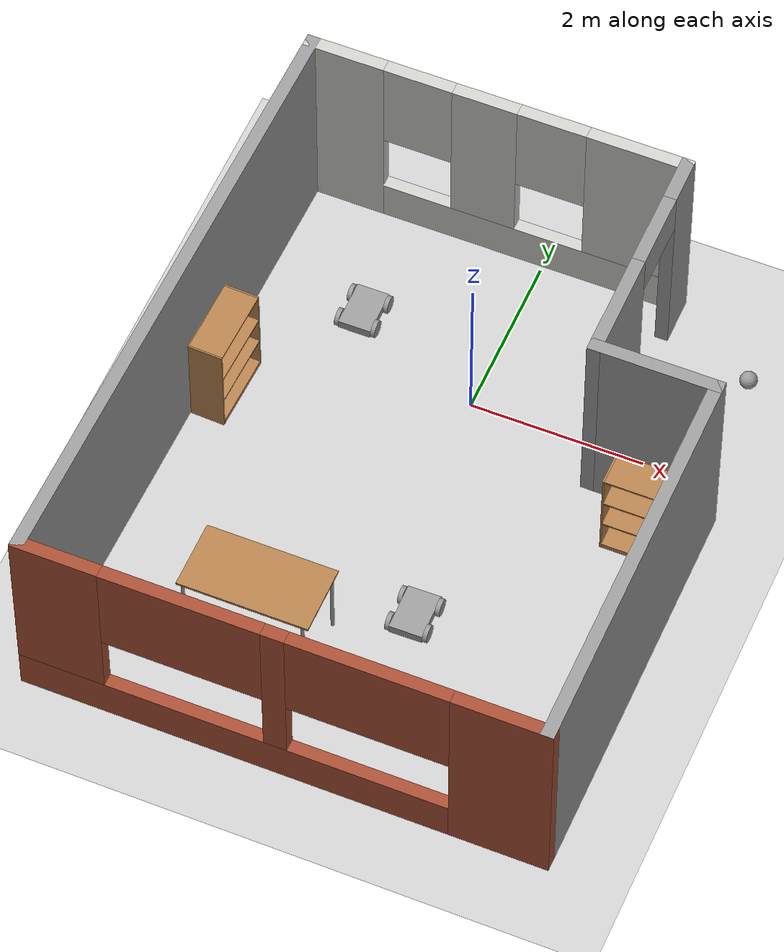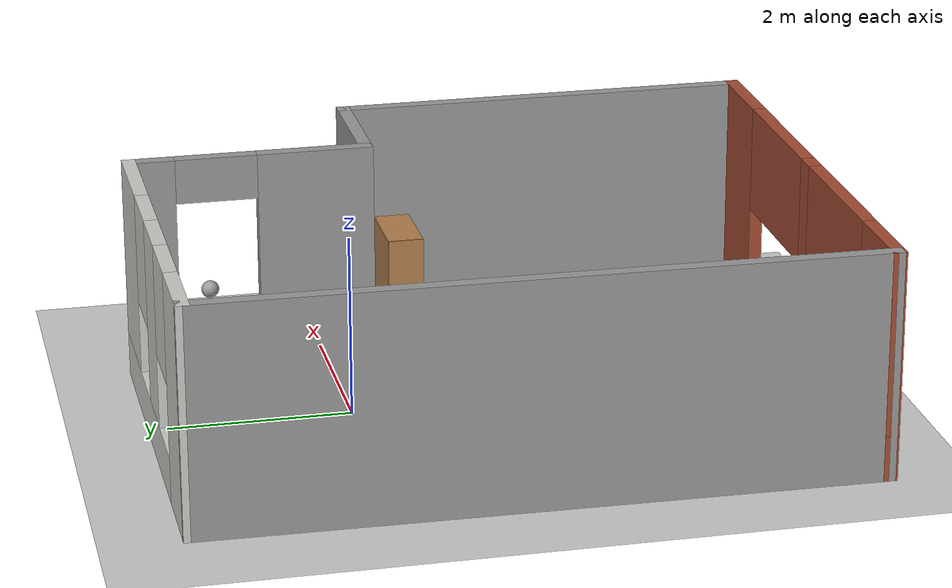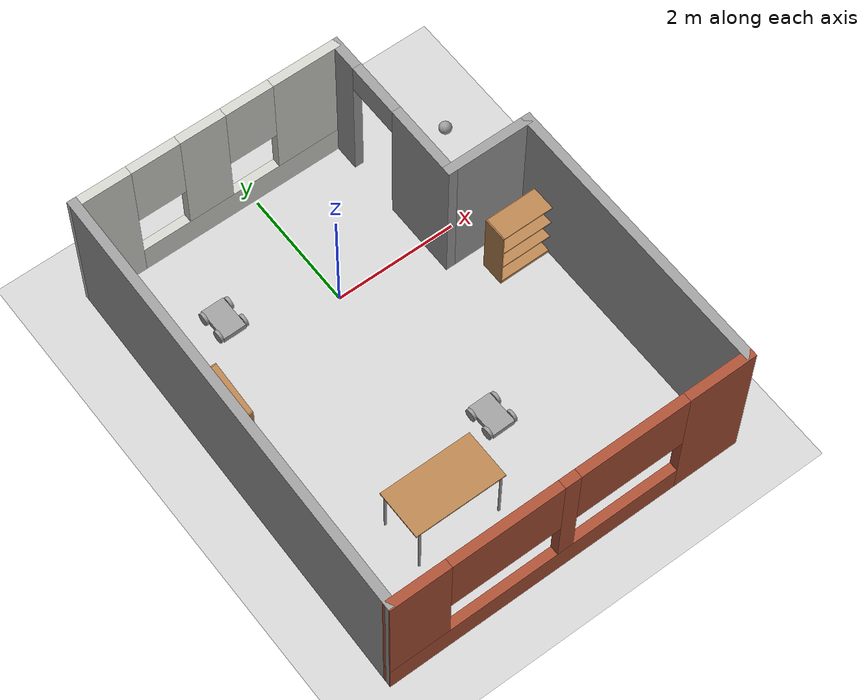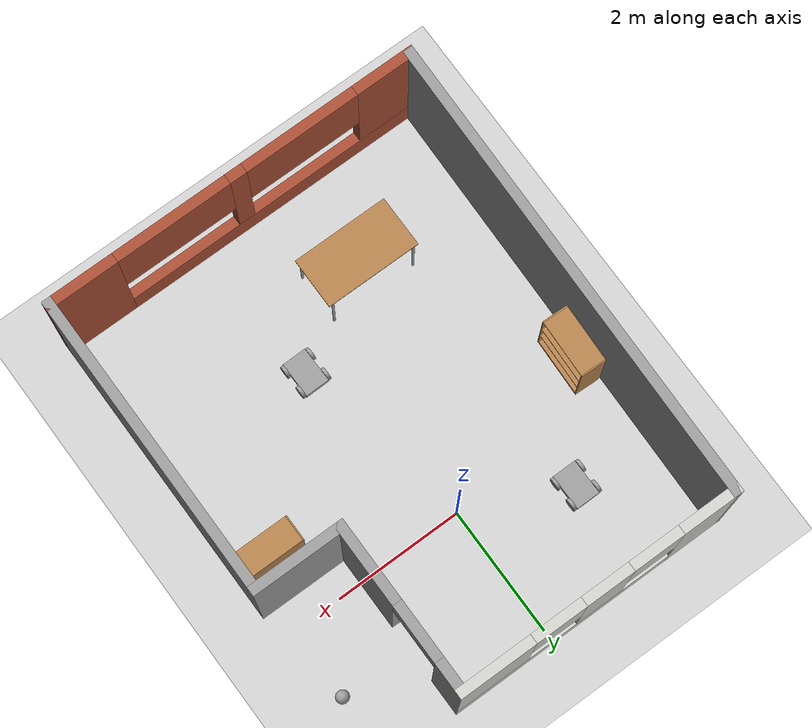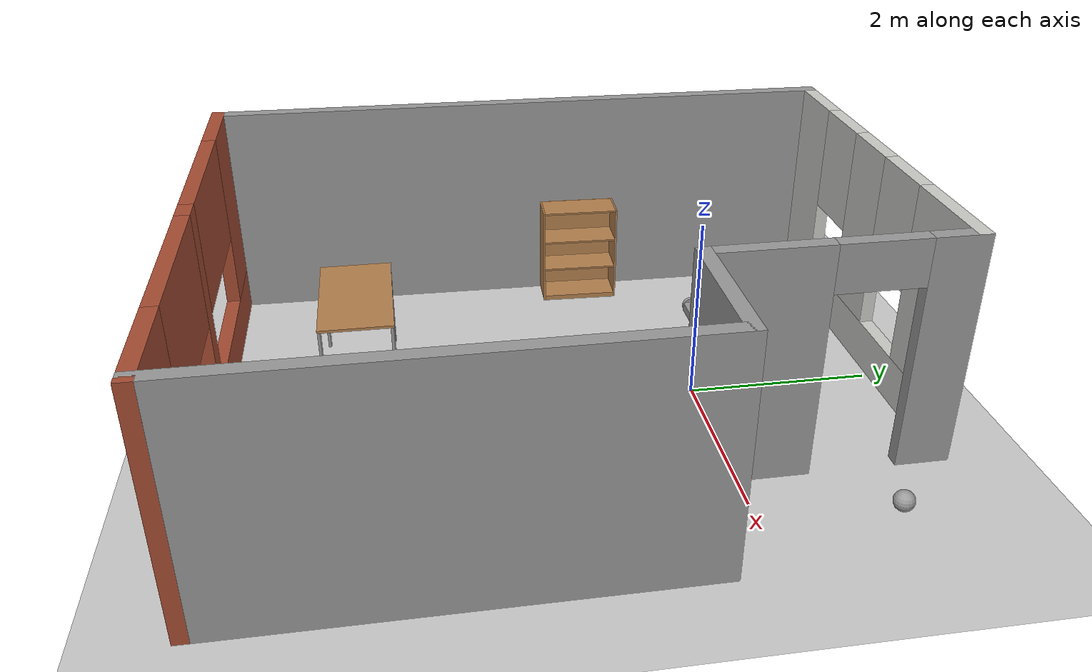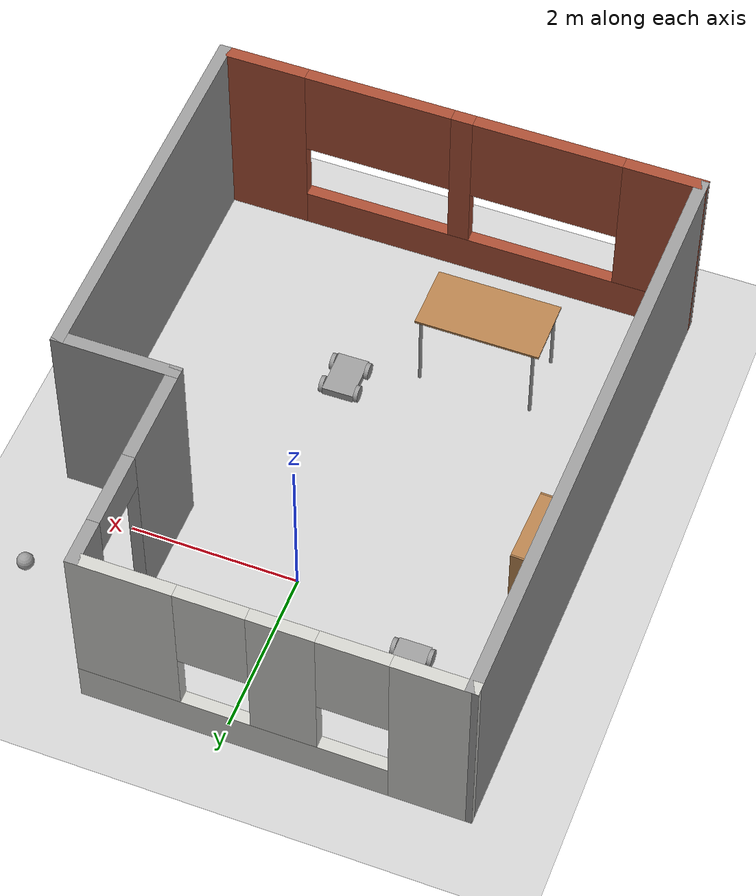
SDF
<sdf version="1.6">
 <world name="default">
  <plugin name="hello" filename="libhello.so"/>
  <light name="sun" type="directional">
   <pose>0 0 10 0 -0 0</pose>
   <diffuse>0.8 0.8 0.8 1</diffuse>
   <specular>0.2 0.2 0.2 1</specular>
   <attenuation>
    <range>1000</range>
    <constant>0.9</constant>
    <linear>0.01</linear>
    <quadratic>0.001</quadratic>
   </attenuation>
   <direction>-0.5 0.1 -0.9</direction>
  </light>
  <model name="ground_plane">
   <static>1</static>
   <link name="link">
    <collision name="collision">
     <geometry><plane><normal>0 0 1</normal><size>100 100</size></plane></geometry>
     <surface>
      <contact><collide_bitmask>65535</collide_bitmask></contact>
      <friction><ode><mu>100</mu><mu2>50</mu2></ode></friction>
     </surface>
    </collision>
    <visual name="visual">
     <cast_shadows>0</cast_shadows>
     <geometry><plane><normal>0 0 1</normal><size>100 100</size></plane></geometry>
     <material>
      <script><uri>file://media/materials/scripts/gazebo.material</uri><name>Gazebo/Grey</name></script>
     </material>
    </visual>
   </link>
  </model>
  <gravity>0 0 -9.8</gravity>
  <magnetic_field>6e-06 2.3e-05 -4.2e-05</magnetic_field>
  <atmosphere type="adiabatic"/>
  <physics name="default_physics" default="0" type="ode">
   <max_step_size>0.001</max_step_size>
   <real_time_factor>1</real_time_factor>
   <real_time_update_rate>1000</real_time_update_rate>
  </physics>
  <scene><ambient>0.4 0.4 0.4 1</ambient><background>0.7 0.7 0.7 1</background><shadows>1</shadows></scene>
  <spherical_coordinates>
   <surface_model>EARTH_WGS84</surface_model>
   <latitude_deg>0</latitude_deg>
   <longitude_deg>0</longitude_deg>
   <elevation>0</elevation>
   <heading_deg>0</heading_deg>
  </spherical_coordinates>
  <model name="Building">
   <pose>0.008927 -1.46971 0 0 -0 0</pose>
   <link name="Wall_1">
    <pose>-0.616625 3.5994 0 0 -0 0</pose>
    <visual name="Wall_1_Visual_0">
     <pose>-1.77601 0 1.25 0 -0 0</pose>
     <geometry><box><size>0.947972 0.15 2.5</size></box></geometry>
     <material>
      <script><uri>file://media/materials/scripts/gazebo.material</uri><name>Gazebo/CeilingTiled</name></script>
      <ambient>1 0.976471 0.964706 1</ambient>
     </material>
     <meta><layer>0</layer></meta>
    </visual>
    <collision name="Wall_1_Collision_0">
     <geometry><box><size>0.947972 0.15 2.5</size></box></geometry>
     <pose>-1.77601 0 1.25 0 -0 0</pose>
    </collision>
    <visual name="Wall_1_Visual_1">
     <pose>0.473986 0 0.25 0 -0 0</pose>
     <geometry><box><size>3.55203 0.15 0.5</size></box></geometry>
     <material>
      <script><uri>file://media/materials/scripts/gazebo.material</uri><name>Gazebo/CeilingTiled</name></script>
      <ambient>1 0.976471 0.964706 1</ambient>
     </material>
     <meta><layer>0</layer></meta>
    </visual>
    <collision name="Wall_1_Collision_1">
     <geometry><box><size>3.55203 0.15 0.5</size></box></geometry>
     <pose>0.473986 0 0.25 0 -0 0</pose>
    </collision>
    <visual name="Wall_1_Visual_2">
     <pose>-0.123721 0 1.5 0 -0 0</pose>
     <geometry><box><size>0.756615 0.15 2</size></box></geometry>
     <material>
      <script><uri>file://media/materials/scripts/gazebo.material</uri><name>Gazebo/CeilingTiled</name></script>
      <ambient>1 0.976471 0.964706 1</ambient>
     </material>
     <meta><layer>0</layer></meta>
    </visual>
    <collision name="Wall_1_Collision_2">
     <geometry><box><size>0.756615 0.15 2</size></box></geometry>
     <pose>-0.123721 0 1.5 0 -0 0</pose>
    </collision>
    <visual name="Wall_1_Visual_3">
     <pose>1.65229 0 1.5 0 -0 0</pose>
     <geometry><box><size>1.19541 0.15 2</size></box></geometry>
     <material>
      <script><uri>file://media/materials/scripts/gazebo.material</uri><name>Gazebo/CeilingTiled</name></script>
      <ambient>1 0.976471 0.964706 1</ambient>
     </material>
     <meta><layer>0</layer></meta>
    </visual>
    <collision name="Wall_1_Collision_3">
     <geometry><box><size>1.19541 0.15 2</size></box></geometry>
     <pose>1.65229 0 1.5 0 -0 0</pose>
    </collision>
    <visual name="Wall_1_Visual_4">
     <pose>-0.902028 0 1.9 0 -0 0</pose>
     <geometry><box><size>0.8 0.15 1.2</size></box></geometry>
     <material>
      <script><uri>file://media/materials/scripts/gazebo.material</uri><name>Gazebo/CeilingTiled</name></script>
      <ambient>1 0.976471 0.964706 1</ambient>
     </material>
     <meta><layer>0</layer></meta>
    </visual>
    <collision name="Wall_1_Collision_4">
     <geometry><box><size>0.8 0.15 1.2</size></box></geometry>
     <pose>-0.902028 0 1.9 0 -0 0</pose>
    </collision>
    <visual name="Wall_1_Visual_5">
     <pose>0.654587 0 1.9 0 -0 0</pose>
     <geometry><box><size>0.8 0.15 1.2</size></box></geometry>
     <material>
      <script><uri>file://media/materials/scripts/gazebo.material</uri><name>Gazebo/CeilingTiled</name></script>
      <ambient>1 0.976471 0.964706 1</ambient>
     </material>
     <meta><layer>0</layer></meta>
    </visual>
    <collision name="Wall_1_Collision_5">
     <geometry><box><size>0.8 0.15 1.2</size></box></geometry>
     <pose>0.654587 0 1.9 0 -0 0</pose>
    </collision>
   </link>
   <link name="Wall_2">
    <pose>1.55838 2.2994 0 0 0 -1.5708</pose>
    <visual name="Wall_2_Visual_0">
     <pose>-1.09219 0 1.25 0 -0 0</pose>
     <geometry><box><size>0.565614 0.15 2.5</size></box></geometry>
     <material>
      <script><uri>file://media/materials/scripts/gazebo.material</uri><name>Gazebo/Grey</name></script>
      <ambient>1 0.976471 0.964706 1</ambient>
     </material>
     <meta><layer>0</layer></meta>
    </visual>
    <collision name="Wall_2_Collision_0">
     <geometry><box><size>0.565614 0.15 2.5</size></box></geometry>
     <pose>-1.09219 0 1.25 0 -0 0</pose>
    </collision>
    <visual name="Wall_2_Visual_1">
     <pose>0.732807 0 1.25 0 -0 0</pose>
     <geometry><box><size>1.28439 0.15 2.5</size></box></geometry>
     <material>
      <script><uri>file://media/materials/scripts/gazebo.material</uri><name>Gazebo/Grey</name></script>
      <ambient>1 0.976471 0.964706 1</ambient>
     </material>
     <meta><layer>0</layer></meta>
    </visual>
    <collision name="Wall_2_Collision_1">
     <geometry><box><size>1.28439 0.15 2.5</size></box></geometry>
     <pose>0.732807 0 1.25 0 -0 0</pose>
    </collision>
    <visual name="Wall_2_Visual_2">
     <pose>-0.359386 0 2.25 0 -0 0</pose>
     <geometry><box><size>0.9 0.15 0.5</size></box></geometry>
     <material>
      <script><uri>file://media/materials/scripts/gazebo.material</uri><name>Gazebo/Grey</name></script>
      <ambient>1 0.976471 0.964706 1</ambient>
     </material>
     <meta><layer>0</layer></meta>
    </visual>
    <collision name="Wall_2_Collision_2">
     <geometry><box><size>0.9 0.15 0.5</size></box></geometry>
     <pose>-0.359386 0 2.25 0 -0 0</pose>
    </collision>
   </link>
   <link name="Wall_3">
    <collision name="Wall_3_Collision">
     <geometry><box><size>1.5 0.15 2.5</size></box></geometry>
     <pose>0 0 1.25 0 -0 0</pose>
    </collision>
    <visual name="Wall_3_Visual">
     <pose>0 0 1.25 0 -0 0</pose>
     <geometry><box><size>1.5 0.15 2.5</size></box></geometry>
     <material>
      <script><uri>file://media/materials/scripts/gazebo.material</uri><name>Gazebo/Grey</name></script>
      <ambient>1 0.976471 0.964706 1</ambient>
     </material>
     <meta><layer>0</layer></meta>
    </visual>
    <pose>2.23338 0.999402 0 0 -0 0</pose>
   </link>
   <link name="Wall_4">
    <collision name="Wall_4_Collision">
     <geometry><box><size>4.75 0.15 2.5</size></box></geometry>
     <pose>0 0 1.25 0 -0 0</pose>
    </collision>
    <visual name="Wall_4_Visual">
     <pose>0 0 1.25 0 -0 0</pose>
     <geometry><box><size>4.75 0.15 2.5</size></box></geometry>
     <material>
      <script><uri>file://media/materials/scripts/gazebo.material</uri><name>Gazebo/Grey</name></script>
      <ambient>1 0.976471 0.964706 1</ambient>
     </material>
     <meta><layer>0</layer></meta>
    </visual>
    <pose>2.90838 -1.3006 0 0 0 -1.5708</pose>
   </link>
   <link name="Wall_5">
    <pose>0.00059 -3.6006 0 0 -0 3.14159</pose>
    <visual name="Wall_5_Visual_0">
     <pose>-2.42357 0 1.25 0 -0 0</pose>
     <geometry><box><size>1.11846 0.15 2.5</size></box></geometry>
     <material>
      <script><uri>file://media/materials/scripts/gazebo.material</uri><name>Gazebo/Bricks</name></script>
      <ambient>1 1 1 1</ambient>
     </material>
     <meta><layer>0</layer></meta>
    </visual>
    <collision name="Wall_5_Collision_0">
     <geometry><box><size>1.11846 0.15 2.5</size></box></geometry>
     <pose>-2.42357 0 1.25 0 -0 0</pose>
    </collision>
    <visual name="Wall_5_Visual_1">
     <pose>0.559229 0 0.25 0 -0 0</pose>
     <geometry><box><size>4.84715 0.15 0.5</size></box></geometry>
     <material>
      <script><uri>file://media/materials/scripts/gazebo.material</uri><name>Gazebo/Bricks</name></script>
      <ambient>1 1 1 1</ambient>
     </material>
     <meta><layer>0</layer></meta>
    </visual>
    <collision name="Wall_5_Collision_1">
     <geometry><box><size>4.84715 0.15 0.5</size></box></geometry>
     <pose>0.559229 0 0.25 0 -0 0</pose>
    </collision>
    <visual name="Wall_5_Visual_2">
     <pose>0.067569 0 1.5 0 -0 0</pose>
     <geometry><box><size>0.263828 0.15 2</size></box></geometry>
     <material>
      <script><uri>file://media/materials/scripts/gazebo.material</uri><name>Gazebo/Bricks</name></script>
      <ambient>1 1 1 1</ambient>
     </material>
     <meta><layer>0</layer></meta>
    </visual>
    <collision name="Wall_5_Collision_2">
     <geometry><box><size>0.263828 0.15 2</size></box></geometry>
     <pose>0.067569 0 1.5 0 -0 0</pose>
    </collision>
    <visual name="Wall_5_Visual_3">
     <pose>2.49114 0 1.5 0 -0 0</pose>
     <geometry><box><size>0.98332 0.15 2</size></box></geometry>
     <material>
      <script><uri>file://media/materials/scripts/gazebo.material</uri><name>Gazebo/Bricks</name></script>
      <ambient>1 1 1 1</ambient>
     </material>
     <meta><layer>0</layer></meta>
    </visual>
    <collision name="Wall_5_Collision_3">
     <geometry><box><size>0.98332 0.15 2</size></box></geometry>
     <pose>2.49114 0 1.5 0 -0 0</pose>
    </collision>
    <visual name="Wall_5_Visual_4">
     <pose>-0.964345 0 1.9 0 -0 0</pose>
     <geometry><box><size>1.8 0.15 1.2</size></box></geometry>
     <material>
      <script><uri>file://media/materials/scripts/gazebo.material</uri><name>Gazebo/Bricks</name></script>
      <ambient>1 1 1 1</ambient>
     </material>
     <meta><layer>0</layer></meta>
    </visual>
    <collision name="Wall_5_Collision_4">
     <geometry><box><size>1.8 0.15 1.2</size></box></geometry>
     <pose>-0.964345 0 1.9 0 -0 0</pose>
    </collision>
    <visual name="Wall_5_Visual_5">
     <pose>1.09948 0 1.9 0 -0 0</pose>
     <geometry><box><size>1.8 0.15 1.2</size></box></geometry>
     <material>
      <script><uri>file://media/materials/scripts/gazebo.material</uri><name>Gazebo/Bricks</name></script>
      <ambient>1 1 1 1</ambient>
     </material>
     <meta><layer>0</layer></meta>
    </visual>
    <collision name="Wall_5_Collision_5">
     <geometry><box><size>1.8 0.15 1.2</size></box></geometry>
     <pose>1.09948 0 1.9 0 -0 0</pose>
    </collision>
   </link>
   <link name="Wall_6">
    <collision name="Wall_6_Collision">
     <geometry><box><size>7.33082 0.15 2.5</size></box></geometry>
     <pose>0 0 1.25 0 -0 0</pose>
    </collision>
    <visual name="Wall_6_Visual">
     <pose>0 0 1.25 0 -0 0</pose>
     <geometry><box><size>7.33082 0.15 2.5</size></box></geometry>
     <material>
      <script><uri>file://media/materials/scripts/gazebo.material</uri><name>Gazebo/Grey</name></script>
      <ambient>1 0.976471 0.964706 1</ambient>
     </material>
     <meta><layer>0</layer></meta>
    </visual>
    <pose>-2.84941 0.009458 0 0 -0 1.5547</pose>
   </link>
   <static>1</static>
  </model>
  <model name="WheeledRobot">
   <link name="link_0">
    <inertial>
     <mass>0.0217691</mass>
     <inertia>
      <ixx>0.00058251</ixx>
      <ixy>0</ixy>
      <ixz>0</ixz>
      <iyy>0.00027872</iyy>
      <iyz>0</iyz>
      <izz>0.00082248</izz>
     </inertia>
    </inertial>
    <visual name="visual">
     <geometry><box><size>0.378102 0.557156 0.103338</size></box></geometry>
     <material>
      <lighting>1</lighting>
      <script><uri>file://media/materials/scripts/gazebo.material</uri><name>Gazebo/Grey</name></script>
      <shader type="pixel"><normal_map>__default__</normal_map></shader>
      <ambient>0.3 0.3 0.3 1</ambient>
      <diffuse>0.7 0.7 0.7 1</diffuse>
      <specular>0.01 0.01 0.01 1</specular>
      <emissive>0 0 0 1</emissive>
     </material>
    </visual>
    <collision name="collision">
     <geometry><box><size>0.378102 0.557156 0.103338</size></box></geometry>
     <surface>
      <friction>
       <ode><mu>1</mu><mu2>1</mu2><fdir1>0 0 0</fdir1><slip1>0</slip1><slip2>0</slip2></ode>
       <torsional>
        <coefficient>1</coefficient>
        <patch_radius>0</patch_radius>
        <surface_radius>0</surface_radius>
        <use_patch_radius>1</use_patch_radius>
        <ode><slip>0</slip></ode>
       </torsional>
      </friction>
      <bounce><restitution_coefficient>0</restitution_coefficient><threshold>1e+06</threshold></bounce>
      <contact>
       <collide_without_contact>0</collide_without_contact>
       <collide_without_contact_bitmask>1</collide_without_contact_bitmask>
       <collide_bitmask>1</collide_bitmask>
       <ode>
        <soft_cfm>0</soft_cfm>
        <soft_erp>0.2</soft_erp>
        <kp>1e+13</kp>
        <kd>1</kd>
        <max_vel>0.01</max_vel>
        <min_depth>0</min_depth>
       </ode>
       <bullet>
        <split_impulse>1</split_impulse>
        <split_impulse_penetration_threshold>-0.01</split_impulse_penetration_threshold>
        <soft_cfm>0</soft_cfm>
        <soft_erp>0.2</soft_erp>
        <kp>1e+13</kp>
        <kd>1</kd>
       </bullet>
      </contact>
     </surface>
    </collision>
   </link>
   <link name="link_1">
    <pose>0.21406 -0.178578 -0 0 1.5707 0</pose>
    <inertial>
     <mass>0.0095045</mass>
     <inertia>
      <ixx>6.778e-05</ixx>
      <ixy>0</ixy>
      <ixz>0</ixz>
      <iyy>6.778e-05</iyy>
      <iyz>0</iyz>
      <izz>0.00012198</izz>
     </inertia>
    </inertial>
    <visual name="visual">
     <geometry><cylinder><radius>0.1</radius><length>0.05</length></cylinder></geometry>
     <material>
      <lighting>1</lighting>
      <script><uri>file://media/materials/scripts/gazebo.material</uri><name>Gazebo/Grey</name></script>
      <shader type="pixel"><normal_map>__default__</normal_map></shader>
      <ambient>0.3 0.3 0.3 1</ambient>
      <diffuse>0.7 0.7 0.7 1</diffuse>
      <specular>0.01 0.01 0.01 1</specular>
      <emissive>0 0 0 1</emissive>
     </material>
    </visual>
    <collision name="collision">
     <geometry><cylinder><radius>0.1</radius><length>0.05</length></cylinder></geometry>
     <surface>
      <friction>
       <ode><mu>1</mu><mu2>1</mu2><fdir1>0 0 0</fdir1><slip1>0</slip1><slip2>0</slip2></ode>
       <torsional>
        <coefficient>1</coefficient>
        <patch_radius>0</patch_radius>
        <surface_radius>0</surface_radius>
        <use_patch_radius>1</use_patch_radius>
        <ode><slip>0</slip></ode>
       </torsional>
      </friction>
      <bounce><restitution_coefficient>0</restitution_coefficient><threshold>1e+06</threshold></bounce>
      <contact>
       <collide_without_contact>0</collide_without_contact>
       <collide_without_contact_bitmask>1</collide_without_contact_bitmask>
       <collide_bitmask>1</collide_bitmask>
       <ode>
        <soft_cfm>0</soft_cfm>
        <soft_erp>0.2</soft_erp>
        <kp>1e+13</kp>
        <kd>1</kd>
        <max_vel>0.01</max_vel>
        <min_depth>0</min_depth>
       </ode>
       <bullet>
        <split_impulse>1</split_impulse>
        <split_impulse_penetration_threshold>-0.01</split_impulse_penetration_threshold>
        <soft_cfm>0</soft_cfm>
        <soft_erp>0.2</soft_erp>
        <kp>1e+13</kp>
        <kd>1</kd>
       </bullet>
      </contact>
     </surface>
    </collision>
   </link>
   <link name="link_1_clone">
    <pose>-0.214061 -0.178578 -0 0 1.5707 0</pose>
    <inertial>
     <mass>0.0095045</mass>
     <inertia>
      <ixx>6.778e-05</ixx>
      <ixy>0</ixy>
      <ixz>0</ixz>
      <iyy>6.778e-05</iyy>
      <iyz>0</iyz>
      <izz>0.00012198</izz>
     </inertia>
    </inertial>
    <visual name="visual">
     <geometry><cylinder><radius>0.1</radius><length>0.05</length></cylinder></geometry>
     <material>
      <lighting>1</lighting>
      <script><uri>file://media/materials/scripts/gazebo.material</uri><name>Gazebo/Grey</name></script>
      <shader type="pixel"><normal_map>__default__</normal_map></shader>
      <ambient>0.3 0.3 0.3 1</ambient>
      <diffuse>0.7 0.7 0.7 1</diffuse>
      <specular>0.01 0.01 0.01 1</specular>
      <emissive>0 0 0 1</emissive>
     </material>
    </visual>
    <collision name="collision">
     <geometry><cylinder><radius>0.1</radius><length>0.05</length></cylinder></geometry>
     <surface>
      <friction>
       <ode><mu>1</mu><mu2>1</mu2><fdir1>0 0 0</fdir1><slip1>0</slip1><slip2>0</slip2></ode>
       <torsional>
        <coefficient>1</coefficient>
        <patch_radius>0</patch_radius>
        <surface_radius>0</surface_radius>
        <use_patch_radius>1</use_patch_radius>
        <ode><slip>0</slip></ode>
       </torsional>
      </friction>
      <bounce><restitution_coefficient>0</restitution_coefficient><threshold>1e+06</threshold></bounce>
      <contact>
       <collide_without_contact>0</collide_without_contact>
       <collide_without_contact_bitmask>1</collide_without_contact_bitmask>
       <collide_bitmask>1</collide_bitmask>
       <ode>
        <soft_cfm>0</soft_cfm>
        <soft_erp>0.2</soft_erp>
        <kp>1e+13</kp>
        <kd>1</kd>
        <max_vel>0.01</max_vel>
        <min_depth>0</min_depth>
       </ode>
       <bullet>
        <split_impulse>1</split_impulse>
        <split_impulse_penetration_threshold>-0.01</split_impulse_penetration_threshold>
        <soft_cfm>0</soft_cfm>
        <soft_erp>0.2</soft_erp>
        <kp>1e+13</kp>
        <kd>1</kd>
       </bullet>
      </contact>
     </surface>
    </collision>
   </link>
   <link name="link_1_clone_0">
    <pose>0.21406 0.178578 -0 0 1.5707 0</pose>
    <inertial>
     <mass>0.0095045</mass>
     <inertia>
      <ixx>6.778e-05</ixx>
      <ixy>0</ixy>
      <ixz>0</ixz>
      <iyy>6.778e-05</iyy>
      <iyz>0</iyz>
      <izz>0.00012198</izz>
     </inertia>
    </inertial>
    <visual name="visual">
     <geometry><cylinder><radius>0.1</radius><length>0.05</length></cylinder></geometry>
     <material>
      <lighting>1</lighting>
      <script><uri>file://media/materials/scripts/gazebo.material</uri><name>Gazebo/Grey</name></script>
      <shader type="pixel"><normal_map>__default__</normal_map></shader>
      <ambient>0.3 0.3 0.3 1</ambient>
      <diffuse>0.7 0.7 0.7 1</diffuse>
      <specular>0.01 0.01 0.01 1</specular>
      <emissive>0 0 0 1</emissive>
     </material>
    </visual>
    <collision name="collision">
     <geometry><cylinder><radius>0.1</radius><length>0.05</length></cylinder></geometry>
     <surface>
      <friction>
       <ode><mu>1</mu><mu2>1</mu2><fdir1>0 0 0</fdir1><slip1>0</slip1><slip2>0</slip2></ode>
       <torsional>
        <coefficient>1</coefficient>
        <patch_radius>0</patch_radius>
        <surface_radius>0</surface_radius>
        <use_patch_radius>1</use_patch_radius>
        <ode><slip>0</slip></ode>
       </torsional>
      </friction>
      <bounce><restitution_coefficient>0</restitution_coefficient><threshold>1e+06</threshold></bounce>
      <contact>
       <collide_without_contact>0</collide_without_contact>
       <collide_without_contact_bitmask>1</collide_without_contact_bitmask>
       <collide_bitmask>1</collide_bitmask>
       <ode>
        <soft_cfm>0</soft_cfm>
        <soft_erp>0.2</soft_erp>
        <kp>1e+13</kp>
        <kd>1</kd>
        <max_vel>0.01</max_vel>
        <min_depth>0</min_depth>
       </ode>
       <bullet>
        <split_impulse>1</split_impulse>
        <split_impulse_penetration_threshold>-0.01</split_impulse_penetration_threshold>
        <soft_cfm>0</soft_cfm>
        <soft_erp>0.2</soft_erp>
        <kp>1e+13</kp>
        <kd>1</kd>
       </bullet>
      </contact>
     </surface>
    </collision>
   </link>
   <link name="link_1_clone_1">
    <pose>-0.214061 0.178578 -0 0 1.5707 0</pose>
    <inertial>
     <mass>0.0095045</mass>
     <inertia>
      <ixx>6.778e-05</ixx>
      <ixy>0</ixy>
      <ixz>0</ixz>
      <iyy>6.778e-05</iyy>
      <iyz>0</iyz>
      <izz>0.00012198</izz>
     </inertia>
    </inertial>
    <visual name="visual">
     <geometry><cylinder><radius>0.1</radius><length>0.05</length></cylinder></geometry>
     <material>
      <lighting>1</lighting>
      <script><uri>file://media/materials/scripts/gazebo.material</uri><name>Gazebo/Grey</name></script>
      <shader type="pixel"><normal_map>__default__</normal_map></shader>
      <ambient>0.3 0.3 0.3 1</ambient>
      <diffuse>0.7 0.7 0.7 1</diffuse>
      <specular>0.01 0.01 0.01 1</specular>
      <emissive>0 0 0 1</emissive>
     </material>
    </visual>
    <collision name="collision">
     <geometry><cylinder><radius>0.1</radius><length>0.05</length></cylinder></geometry>
     <surface>
      <friction>
       <ode><mu>1</mu><mu2>1</mu2><fdir1>0 0 0</fdir1><slip1>0</slip1><slip2>0</slip2></ode>
       <torsional>
        <coefficient>1</coefficient>
        <patch_radius>0</patch_radius>
        <surface_radius>0</surface_radius>
        <use_patch_radius>1</use_patch_radius>
        <ode><slip>0</slip></ode>
       </torsional>
      </friction>
      <bounce><restitution_coefficient>0</restitution_coefficient><threshold>1e+06</threshold></bounce>
      <contact>
       <collide_without_contact>0</collide_without_contact>
       <collide_without_contact_bitmask>1</collide_without_contact_bitmask>
       <collide_bitmask>1</collide_bitmask>
       <ode>
        <soft_cfm>0</soft_cfm>
        <soft_erp>0.2</soft_erp>
        <kp>1e+13</kp>
        <kd>1</kd>
        <max_vel>0.01</max_vel>
        <min_depth>0</min_depth>
       </ode>
       <bullet>
        <split_impulse>1</split_impulse>
        <split_impulse_penetration_threshold>-0.01</split_impulse_penetration_threshold>
        <soft_cfm>0</soft_cfm>
        <soft_erp>0.2</soft_erp>
        <kp>1e+13</kp>
        <kd>1</kd>
       </bullet>
      </contact>
     </surface>
    </collision>
   </link>
   <joint name="link_0_JOINT_0" type="revolute">
    <parent>link_0</parent>
    <child>link_1</child>
    <axis>
     <xyz>0 0 1</xyz>
     <use_parent_model_frame>0</use_parent_model_frame>
     <limit>
      <lower>-1.79769e+308</lower>
      <upper>1.79769e+308</upper>
      <effort>-1</effort>
      <velocity>-1</velocity>
     </limit>
     <dynamics>
      <spring_reference>0</spring_reference>
      <spring_stiffness>0</spring_stiffness>
      <damping>0</damping>
     </dynamics>
    </axis>
    <physics>
     <ode><limit><cfm>0</cfm><erp>0.2</erp></limit><suspension><cfm>0</cfm><erp>0.2</erp></suspension></ode>
    </physics>
   </joint>
   <joint name="link_0_JOINT_1" type="revolute">
    <parent>link_0</parent>
    <child>link_1_clone</child>
    <axis>
     <xyz>0 0 1</xyz>
     <use_parent_model_frame>0</use_parent_model_frame>
     <limit>
      <lower>-1.79769e+308</lower>
      <upper>1.79769e+308</upper>
      <effort>-1</effort>
      <velocity>-1</velocity>
     </limit>
     <dynamics>
      <spring_reference>0</spring_reference>
      <spring_stiffness>0</spring_stiffness>
      <damping>0</damping>
     </dynamics>
    </axis>
    <physics>
     <ode><limit><cfm>0</cfm><erp>0.2</erp></limit><suspension><cfm>0</cfm><erp>0.2</erp></suspension></ode>
    </physics>
   </joint>
   <joint name="link_0_JOINT_2" type="revolute">
    <parent>link_0</parent>
    <child>link_1_clone_1</child>
    <axis>
     <xyz>0 0 1</xyz>
     <use_parent_model_frame>0</use_parent_model_frame>
     <limit>
      <lower>-1.79769e+308</lower>
      <upper>1.79769e+308</upper>
      <effort>-1</effort>
      <velocity>-1</velocity>
     </limit>
     <dynamics>
      <spring_reference>0</spring_reference>
      <spring_stiffness>0</spring_stiffness>
      <damping>0</damping>
     </dynamics>
    </axis>
    <physics>
     <ode><limit><cfm>0</cfm><erp>0.2</erp></limit><suspension><cfm>0</cfm><erp>0.2</erp></suspension></ode>
    </physics>
   </joint>
   <joint name="link_0_JOINT_3" type="revolute">
    <parent>link_0</parent>
    <child>link_1_clone_0</child>
    <axis>
     <xyz>0 0 1</xyz>
     <use_parent_model_frame>0</use_parent_model_frame>
     <limit>
      <lower>-1.79769e+308</lower>
      <upper>1.79769e+308</upper>
      <effort>-1</effort>
      <velocity>-1</velocity>
     </limit>
     <dynamics>
      <spring_reference>0</spring_reference>
      <spring_stiffness>0</spring_stiffness>
      <damping>0</damping>
     </dynamics>
    </axis>
    <physics>
     <ode><limit><cfm>0</cfm><erp>0.2</erp></limit><suspension><cfm>0</cfm><erp>0.2</erp></suspension></ode>
    </physics>
   </joint>
   <static>0</static>
   <pose>-1.54772 0.655141 0.100002 0 -0 0.006579</pose>
  </model>
  <model name="WheeledRobot_0">
   <link name="link_0">
    <inertial>
     <mass>0.0217691</mass>
     <inertia>
      <ixx>0.00058251</ixx>
      <ixy>0</ixy>
      <ixz>0</ixz>
      <iyy>0.00027872</iyy>
      <iyz>0</iyz>
      <izz>0.00082248</izz>
     </inertia>
    </inertial>
    <visual name="visual">
     <geometry><box><size>0.378102 0.557156 0.103338</size></box></geometry>
     <material>
      <lighting>1</lighting>
      <script><uri>file://media/materials/scripts/gazebo.material</uri><name>Gazebo/Grey</name></script>
      <shader type="pixel"><normal_map>__default__</normal_map></shader>
      <ambient>0.3 0.3 0.3 1</ambient>
      <diffuse>0.7 0.7 0.7 1</diffuse>
      <specular>0.01 0.01 0.01 1</specular>
      <emissive>0 0 0 1</emissive>
     </material>
    </visual>
    <collision name="collision">
     <geometry><box><size>0.378102 0.557156 0.103338</size></box></geometry>
     <surface>
      <friction>
       <ode><mu>1</mu><mu2>1</mu2><fdir1>0 0 0</fdir1><slip1>0</slip1><slip2>0</slip2></ode>
       <torsional>
        <coefficient>1</coefficient>
        <patch_radius>0</patch_radius>
        <surface_radius>0</surface_radius>
        <use_patch_radius>1</use_patch_radius>
        <ode><slip>0</slip></ode>
       </torsional>
      </friction>
      <bounce><restitution_coefficient>0</restitution_coefficient><threshold>1e+06</threshold></bounce>
      <contact>
       <collide_without_contact>0</collide_without_contact>
       <collide_without_contact_bitmask>1</collide_without_contact_bitmask>
       <collide_bitmask>1</collide_bitmask>
       <ode>
        <soft_cfm>0</soft_cfm>
        <soft_erp>0.2</soft_erp>
        <kp>1e+13</kp>
        <kd>1</kd>
        <max_vel>0.01</max_vel>
        <min_depth>0</min_depth>
       </ode>
       <bullet>
        <split_impulse>1</split_impulse>
        <split_impulse_penetration_threshold>-0.01</split_impulse_penetration_threshold>
        <soft_cfm>0</soft_cfm>
        <soft_erp>0.2</soft_erp>
        <kp>1e+13</kp>
        <kd>1</kd>
       </bullet>
      </contact>
     </surface>
    </collision>
   </link>
   <link name="link_1">
    <pose>0.21406 -0.178578 -0 0 1.5707 0</pose>
    <inertial>
     <mass>0.0095045</mass>
     <inertia>
      <ixx>6.778e-05</ixx>
      <ixy>0</ixy>
      <ixz>0</ixz>
      <iyy>6.778e-05</iyy>
      <iyz>0</iyz>
      <izz>0.00012198</izz>
     </inertia>
    </inertial>
    <visual name="visual">
     <geometry><cylinder><radius>0.1</radius><length>0.05</length></cylinder></geometry>
     <material>
      <lighting>1</lighting>
      <script><uri>file://media/materials/scripts/gazebo.material</uri><name>Gazebo/Grey</name></script>
      <shader type="pixel"><normal_map>__default__</normal_map></shader>
      <ambient>0.3 0.3 0.3 1</ambient>
      <diffuse>0.7 0.7 0.7 1</diffuse>
      <specular>0.01 0.01 0.01 1</specular>
      <emissive>0 0 0 1</emissive>
     </material>
    </visual>
    <collision name="collision">
     <geometry><cylinder><radius>0.1</radius><length>0.05</length></cylinder></geometry>
     <surface>
      <friction>
       <ode><mu>1</mu><mu2>1</mu2><fdir1>0 0 0</fdir1><slip1>0</slip1><slip2>0</slip2></ode>
       <torsional>
        <coefficient>1</coefficient>
        <patch_radius>0</patch_radius>
        <surface_radius>0</surface_radius>
        <use_patch_radius>1</use_patch_radius>
        <ode><slip>0</slip></ode>
       </torsional>
      </friction>
      <bounce><restitution_coefficient>0</restitution_coefficient><threshold>1e+06</threshold></bounce>
      <contact>
       <collide_without_contact>0</collide_without_contact>
       <collide_without_contact_bitmask>1</collide_without_contact_bitmask>
       <collide_bitmask>1</collide_bitmask>
       <ode>
        <soft_cfm>0</soft_cfm>
        <soft_erp>0.2</soft_erp>
        <kp>1e+13</kp>
        <kd>1</kd>
        <max_vel>0.01</max_vel>
        <min_depth>0</min_depth>
       </ode>
       <bullet>
        <split_impulse>1</split_impulse>
        <split_impulse_penetration_threshold>-0.01</split_impulse_penetration_threshold>
        <soft_cfm>0</soft_cfm>
        <soft_erp>0.2</soft_erp>
        <kp>1e+13</kp>
        <kd>1</kd>
       </bullet>
      </contact>
     </surface>
    </collision>
   </link>
   <link name="link_1_clone">
    <pose>-0.214061 -0.178578 -0 0 1.5707 0</pose>
    <inertial>
     <mass>0.0095045</mass>
     <inertia>
      <ixx>6.778e-05</ixx>
      <ixy>0</ixy>
      <ixz>0</ixz>
      <iyy>6.778e-05</iyy>
      <iyz>0</iyz>
      <izz>0.00012198</izz>
     </inertia>
    </inertial>
    <visual name="visual">
     <geometry><cylinder><radius>0.1</radius><length>0.05</length></cylinder></geometry>
     <material>
      <lighting>1</lighting>
      <script><uri>file://media/materials/scripts/gazebo.material</uri><name>Gazebo/Grey</name></script>
      <shader type="pixel"><normal_map>__default__</normal_map></shader>
      <ambient>0.3 0.3 0.3 1</ambient>
      <diffuse>0.7 0.7 0.7 1</diffuse>
      <specular>0.01 0.01 0.01 1</specular>
      <emissive>0 0 0 1</emissive>
     </material>
    </visual>
    <collision name="collision">
     <geometry><cylinder><radius>0.1</radius><length>0.05</length></cylinder></geometry>
     <surface>
      <friction>
       <ode><mu>1</mu><mu2>1</mu2><fdir1>0 0 0</fdir1><slip1>0</slip1><slip2>0</slip2></ode>
       <torsional>
        <coefficient>1</coefficient>
        <patch_radius>0</patch_radius>
        <surface_radius>0</surface_radius>
        <use_patch_radius>1</use_patch_radius>
        <ode><slip>0</slip></ode>
       </torsional>
      </friction>
      <bounce><restitution_coefficient>0</restitution_coefficient><threshold>1e+06</threshold></bounce>
      <contact>
       <collide_without_contact>0</collide_without_contact>
       <collide_without_contact_bitmask>1</collide_without_contact_bitmask>
       <collide_bitmask>1</collide_bitmask>
       <ode>
        <soft_cfm>0</soft_cfm>
        <soft_erp>0.2</soft_erp>
        <kp>1e+13</kp>
        <kd>1</kd>
        <max_vel>0.01</max_vel>
        <min_depth>0</min_depth>
       </ode>
       <bullet>
        <split_impulse>1</split_impulse>
        <split_impulse_penetration_threshold>-0.01</split_impulse_penetration_threshold>
        <soft_cfm>0</soft_cfm>
        <soft_erp>0.2</soft_erp>
        <kp>1e+13</kp>
        <kd>1</kd>
       </bullet>
      </contact>
     </surface>
    </collision>
   </link>
   <link name="link_1_clone_0">
    <pose>0.21406 0.178578 -0 0 1.5707 0</pose>
    <inertial>
     <mass>0.0095045</mass>
     <inertia>
      <ixx>6.778e-05</ixx>
      <ixy>0</ixy>
      <ixz>0</ixz>
      <iyy>6.778e-05</iyy>
      <iyz>0</iyz>
      <izz>0.00012198</izz>
     </inertia>
    </inertial>
    <visual name="visual">
     <geometry><cylinder><radius>0.1</radius><length>0.05</length></cylinder></geometry>
     <material>
      <lighting>1</lighting>
      <script><uri>file://media/materials/scripts/gazebo.material</uri><name>Gazebo/Grey</name></script>
      <shader type="pixel"><normal_map>__default__</normal_map></shader>
      <ambient>0.3 0.3 0.3 1</ambient>
      <diffuse>0.7 0.7 0.7 1</diffuse>
      <specular>0.01 0.01 0.01 1</specular>
      <emissive>0 0 0 1</emissive>
     </material>
    </visual>
    <collision name="collision">
     <geometry><cylinder><radius>0.1</radius><length>0.05</length></cylinder></geometry>
     <surface>
      <friction>
       <ode><mu>1</mu><mu2>1</mu2><fdir1>0 0 0</fdir1><slip1>0</slip1><slip2>0</slip2></ode>
       <torsional>
        <coefficient>1</coefficient>
        <patch_radius>0</patch_radius>
        <surface_radius>0</surface_radius>
        <use_patch_radius>1</use_patch_radius>
        <ode><slip>0</slip></ode>
       </torsional>
      </friction>
      <bounce><restitution_coefficient>0</restitution_coefficient><threshold>1e+06</threshold></bounce>
      <contact>
       <collide_without_contact>0</collide_without_contact>
       <collide_without_contact_bitmask>1</collide_without_contact_bitmask>
       <collide_bitmask>1</collide_bitmask>
       <ode>
        <soft_cfm>0</soft_cfm>
        <soft_erp>0.2</soft_erp>
        <kp>1e+13</kp>
        <kd>1</kd>
        <max_vel>0.01</max_vel>
        <min_depth>0</min_depth>
       </ode>
       <bullet>
        <split_impulse>1</split_impulse>
        <split_impulse_penetration_threshold>-0.01</split_impulse_penetration_threshold>
        <soft_cfm>0</soft_cfm>
        <soft_erp>0.2</soft_erp>
        <kp>1e+13</kp>
        <kd>1</kd>
       </bullet>
      </contact>
     </surface>
    </collision>
   </link>
   <link name="link_1_clone_1">
    <pose>-0.214061 0.178578 -0 0 1.5707 0</pose>
    <inertial>
     <mass>0.0095045</mass>
     <inertia>
      <ixx>6.778e-05</ixx>
      <ixy>0</ixy>
      <ixz>0</ixz>
      <iyy>6.778e-05</iyy>
      <iyz>0</iyz>
      <izz>0.00012198</izz>
     </inertia>
    </inertial>
    <visual name="visual">
     <geometry><cylinder><radius>0.1</radius><length>0.05</length></cylinder></geometry>
     <material>
      <lighting>1</lighting>
      <script><uri>file://media/materials/scripts/gazebo.material</uri><name>Gazebo/Grey</name></script>
      <shader type="pixel"><normal_map>__default__</normal_map></shader>
      <ambient>0.3 0.3 0.3 1</ambient>
      <diffuse>0.7 0.7 0.7 1</diffuse>
      <specular>0.01 0.01 0.01 1</specular>
      <emissive>0 0 0 1</emissive>
     </material>
    </visual>
    <collision name="collision">
     <geometry><cylinder><radius>0.1</radius><length>0.05</length></cylinder></geometry>
     <surface>
      <friction>
       <ode><mu>1</mu><mu2>1</mu2><fdir1>0 0 0</fdir1><slip1>0</slip1><slip2>0</slip2></ode>
       <torsional>
        <coefficient>1</coefficient>
        <patch_radius>0</patch_radius>
        <surface_radius>0</surface_radius>
        <use_patch_radius>1</use_patch_radius>
        <ode><slip>0</slip></ode>
       </torsional>
      </friction>
      <bounce><restitution_coefficient>0</restitution_coefficient><threshold>1e+06</threshold></bounce>
      <contact>
       <collide_without_contact>0</collide_without_contact>
       <collide_without_contact_bitmask>1</collide_without_contact_bitmask>
       <collide_bitmask>1</collide_bitmask>
       <ode>
        <soft_cfm>0</soft_cfm>
        <soft_erp>0.2</soft_erp>
        <kp>1e+13</kp>
        <kd>1</kd>
        <max_vel>0.01</max_vel>
        <min_depth>0</min_depth>
       </ode>
       <bullet>
        <split_impulse>1</split_impulse>
        <split_impulse_penetration_threshold>-0.01</split_impulse_penetration_threshold>
        <soft_cfm>0</soft_cfm>
        <soft_erp>0.2</soft_erp>
        <kp>1e+13</kp>
        <kd>1</kd>
       </bullet>
      </contact>
     </surface>
    </collision>
   </link>
   <joint name="link_0_JOINT_0" type="revolute">
    <parent>link_0</parent>
    <child>link_1</child>
    <axis>
     <xyz>0 0 1</xyz>
     <use_parent_model_frame>0</use_parent_model_frame>
     <limit>
      <lower>-1.79769e+308</lower>
      <upper>1.79769e+308</upper>
      <effort>-1</effort>
      <velocity>-1</velocity>
     </limit>
     <dynamics>
      <spring_reference>0</spring_reference>
      <spring_stiffness>0</spring_stiffness>
      <damping>0</damping>
     </dynamics>
    </axis>
    <physics>
     <ode><limit><cfm>0</cfm><erp>0.2</erp></limit><suspension><cfm>0</cfm><erp>0.2</erp></suspension></ode>
    </physics>
   </joint>
   <joint name="link_0_JOINT_1" type="revolute">
    <parent>link_0</parent>
    <child>link_1_clone</child>
    <axis>
     <xyz>0 0 1</xyz>
     <use_parent_model_frame>0</use_parent_model_frame>
     <limit>
      <lower>-1.79769e+308</lower>
      <upper>1.79769e+308</upper>
      <effort>-1</effort>
      <velocity>-1</velocity>
     </limit>
     <dynamics>
      <spring_reference>0</spring_reference>
      <spring_stiffness>0</spring_stiffness>
      <damping>0</damping>
     </dynamics>
    </axis>
    <physics>
     <ode><limit><cfm>0</cfm><erp>0.2</erp></limit><suspension><cfm>0</cfm><erp>0.2</erp></suspension></ode>
    </physics>
   </joint>
   <joint name="link_0_JOINT_2" type="revolute">
    <parent>link_0</parent>
    <child>link_1_clone_1</child>
    <axis>
     <xyz>0 0 1</xyz>
     <use_parent_model_frame>0</use_parent_model_frame>
     <limit>
      <lower>-1.79769e+308</lower>
      <upper>1.79769e+308</upper>
      <effort>-1</effort>
      <velocity>-1</velocity>
     </limit>
     <dynamics>
      <spring_reference>0</spring_reference>
      <spring_stiffness>0</spring_stiffness>
      <damping>0</damping>
     </dynamics>
    </axis>
    <physics>
     <ode><limit><cfm>0</cfm><erp>0.2</erp></limit><suspension><cfm>0</cfm><erp>0.2</erp></suspension></ode>
    </physics>
   </joint>
   <joint name="link_0_JOINT_3" type="revolute">
    <parent>link_0</parent>
    <child>link_1_clone_0</child>
    <axis>
     <xyz>0 0 1</xyz>
     <use_parent_model_frame>0</use_parent_model_frame>
     <limit>
      <lower>-1.79769e+308</lower>
      <upper>1.79769e+308</upper>
      <effort>-1</effort>
      <velocity>-1</velocity>
     </limit>
     <dynamics>
      <spring_reference>0</spring_reference>
      <spring_stiffness>0</spring_stiffness>
      <damping>0</damping>
     </dynamics>
    </axis>
    <physics>
     <ode><limit><cfm>0</cfm><erp>0.2</erp></limit><suspension><cfm>0</cfm><erp>0.2</erp></suspension></ode>
    </physics>
   </joint>
   <static>0</static>
   <pose>0.528487 -2.8202 0.099999 0 -1.9e-05 0.015056</pose>
  </model>
  <model name="bookshelf">
   <static>1</static>
   <link name="link">
    <inertial><mass>1</mass></inertial>
    <collision name="back">
     <pose>0 0.005 0.6 0 -0 0</pose>
     <geometry><box><size>0.9 0.01 1.2</size></box></geometry>
    </collision>
    <visual name="visual1">
     <pose>0 0.005 0.6 0 -0 0</pose>
     <geometry><box><size>0.9 0.01 1.2</size></box></geometry>
     <material>
      <script><uri>file://media/materials/scripts/gazebo.material</uri><name>Gazebo/Wood</name></script>
     </material>
    </visual>
    <collision name="left_side">
     <pose>0.45 -0.195 0.6 0 -0 0</pose>
     <geometry><box><size>0.02 0.4 1.2</size></box></geometry>
    </collision>
    <visual name="visual2">
     <pose>0.45 -0.195 0.6 0 -0 0</pose>
     <geometry><box><size>0.02 0.4 1.2</size></box></geometry>
     <material>
      <script><uri>file://media/materials/scripts/gazebo.material</uri><name>Gazebo/Wood</name></script>
     </material>
    </visual>
    <collision name="right_side">
     <pose>-0.45 -0.195 0.6 0 -0 0</pose>
     <geometry><box><size>0.02 0.4 1.2</size></box></geometry>
    </collision>
    <visual name="visual3">
     <pose>-0.45 -0.195 0.6 0 -0 0</pose>
     <geometry><box><size>0.02 0.4 1.2</size></box></geometry>
     <material>
      <script><uri>file://media/materials/scripts/gazebo.material</uri><name>Gazebo/Wood</name></script>
     </material>
    </visual>
    <collision name="bottom">
     <pose>0 -0.195 0.03 0 -0 0</pose>
     <geometry><box><size>0.88 0.4 0.06</size></box></geometry>
    </collision>
    <visual name="visual4">
     <pose>0 -0.195 0.03 0 -0 0</pose>
     <geometry><box><size>0.88 0.4 0.06</size></box></geometry>
     <material>
      <script><uri>file://media/materials/scripts/gazebo.material</uri><name>Gazebo/Wood</name></script>
     </material>
    </visual>
    <collision name="top">
     <pose>0 -0.195 1.19 0 -0 0</pose>
     <geometry><box><size>0.88 0.4 0.02</size></box></geometry>
    </collision>
    <visual name="visual5">
     <pose>0 -0.195 1.19 0 -0 0</pose>
     <geometry><box><size>0.88 0.4 0.02</size></box></geometry>
     <material>
      <script><uri>file://media/materials/scripts/gazebo.material</uri><name>Gazebo/Wood</name></script>
     </material>
    </visual>
    <collision name="low_shelf">
     <pose>0 -0.195 0.43 0 -0 0</pose>
     <geometry><box><size>0.88 0.4 0.02</size></box></geometry>
    </collision>
    <visual name="visual6">
     <pose>0 -0.195 0.43 0 -0 0</pose>
     <geometry><box><size>0.88 0.4 0.02</size></box></geometry>
     <material>
      <script><uri>file://media/materials/scripts/gazebo.material</uri><name>Gazebo/Wood</name></script>
     </material>
    </visual>
    <collision name="high_shelf">
     <pose>0 -0.195 0.8 0 -0 0</pose>
     <geometry><box><size>0.88 0.4 0.02</size></box></geometry>
    </collision>
    <visual name="visual7">
     <pose>0 -0.195 0.8 0 -0 0</pose>
     <geometry><box><size>0.88 0.4 0.02</size></box></geometry>
     <material>
      <script><uri>file://media/materials/scripts/gazebo.material</uri><name>Gazebo/Wood</name></script>
     </material>
    </visual>
   </link>
   <pose>2.43158 -0.797624 0 0 -0 0</pose>
  </model>
  <model name="bookshelf_0">
   <static>1</static>
   <link name="link">
    <inertial><mass>1</mass></inertial>
    <collision name="back">
     <pose>0 0.005 0.6 0 -0 0</pose>
     <geometry><box><size>0.9 0.01 1.2</size></box></geometry>
    </collision>
    <visual name="visual1">
     <pose>0 0.005 0.6 0 -0 0</pose>
     <geometry><box><size>0.9 0.01 1.2</size></box></geometry>
     <material>
      <script><uri>file://media/materials/scripts/gazebo.material</uri><name>Gazebo/Wood</name></script>
     </material>
    </visual>
    <collision name="left_side">
     <pose>0.45 -0.195 0.6 0 -0 0</pose>
     <geometry><box><size>0.02 0.4 1.2</size></box></geometry>
    </collision>
    <visual name="visual2">
     <pose>0.45 -0.195 0.6 0 -0 0</pose>
     <geometry><box><size>0.02 0.4 1.2</size></box></geometry>
     <material>
      <script><uri>file://media/materials/scripts/gazebo.material</uri><name>Gazebo/Wood</name></script>
     </material>
    </visual>
    <collision name="right_side">
     <pose>-0.45 -0.195 0.6 0 -0 0</pose>
     <geometry><box><size>0.02 0.4 1.2</size></box></geometry>
    </collision>
    <visual name="visual3">
     <pose>-0.45 -0.195 0.6 0 -0 0</pose>
     <geometry><box><size>0.02 0.4 1.2</size></box></geometry>
     <material>
      <script><uri>file://media/materials/scripts/gazebo.material</uri><name>Gazebo/Wood</name></script>
     </material>
    </visual>
    <collision name="bottom">
     <pose>0 -0.195 0.03 0 -0 0</pose>
     <geometry><box><size>0.88 0.4 0.06</size></box></geometry>
    </collision>
    <visual name="visual4">
     <pose>0 -0.195 0.03 0 -0 0</pose>
     <geometry><box><size>0.88 0.4 0.06</size></box></geometry>
     <material>
      <script><uri>file://media/materials/scripts/gazebo.material</uri><name>Gazebo/Wood</name></script>
     </material>
    </visual>
    <collision name="top">
     <pose>0 -0.195 1.19 0 -0 0</pose>
     <geometry><box><size>0.88 0.4 0.02</size></box></geometry>
    </collision>
    <visual name="visual5">
     <pose>0 -0.195 1.19 0 -0 0</pose>
     <geometry><box><size>0.88 0.4 0.02</size></box></geometry>
     <material>
      <script><uri>file://media/materials/scripts/gazebo.material</uri><name>Gazebo/Wood</name></script>
     </material>
    </visual>
    <collision name="low_shelf">
     <pose>0 -0.195 0.43 0 -0 0</pose>
     <geometry><box><size>0.88 0.4 0.02</size></box></geometry>
    </collision>
    <visual name="visual6">
     <pose>0 -0.195 0.43 0 -0 0</pose>
     <geometry><box><size>0.88 0.4 0.02</size></box></geometry>
     <material>
      <script><uri>file://media/materials/scripts/gazebo.material</uri><name>Gazebo/Wood</name></script>
     </material>
    </visual>
    <collision name="high_shelf">
     <pose>0 -0.195 0.8 0 -0 0</pose>
     <geometry><box><size>0.88 0.4 0.02</size></box></geometry>
    </collision>
    <visual name="visual7">
     <pose>0 -0.195 0.8 0 -0 0</pose>
     <geometry><box><size>0.88 0.4 0.02</size></box></geometry>
     <material>
      <script><uri>file://media/materials/scripts/gazebo.material</uri><name>Gazebo/Wood</name></script>
     </material>
    </visual>
   </link>
   <pose>-2.73757 -0.821979 0 0 -0 1.53707</pose>
  </model>
  <model name="table">
   <static>1</static>
   <link name="link">
    <collision name="surface">
     <pose>0 0 1 0 -0 0</pose>
     <geometry><box><size>1.5 0.8 0.03</size></box></geometry>
     <surface><friction><ode><mu>0.6</mu><mu2>0.6</mu2></ode></friction></surface>
    </collision>
    <visual name="visual1">
     <pose>0 0 1 0 -0 0</pose>
     <geometry><box><size>1.5 0.8 0.03</size></box></geometry>
     <material>
      <script><uri>file://media/materials/scripts/gazebo.material</uri><name>Gazebo/Wood</name></script>
     </material>
    </visual>
    <collision name="front_left_leg">
     <pose>0.68 0.38 0.5 0 -0 0</pose>
     <geometry><cylinder><radius>0.02</radius><length>1</length></cylinder></geometry>
    </collision>
    <visual name="front_left_leg">
     <pose>0.68 0.38 0.5 0 -0 0</pose>
     <geometry><cylinder><radius>0.02</radius><length>1</length></cylinder></geometry>
     <material>
      <script><uri>file://media/materials/scripts/gazebo.material</uri><name>Gazebo/Grey</name></script>
     </material>
    </visual>
    <collision name="front_right_leg">
     <pose>0.68 -0.38 0.5 0 -0 0</pose>
     <geometry><cylinder><radius>0.02</radius><length>1</length></cylinder></geometry>
    </collision>
    <visual name="front_right_leg">
     <pose>0.68 -0.38 0.5 0 -0 0</pose>
     <geometry><cylinder><radius>0.02</radius><length>1</length></cylinder></geometry>
     <material>
      <script><uri>file://media/materials/scripts/gazebo.material</uri><name>Gazebo/Grey</name></script>
     </material>
    </visual>
    <collision name="back_right_leg">
     <pose>-0.68 -0.38 0.5 0 -0 0</pose>
     <geometry><cylinder><radius>0.02</radius><length>1</length></cylinder></geometry>
    </collision>
    <visual name="back_right_leg">
     <pose>-0.68 -0.38 0.5 0 -0 0</pose>
     <geometry><cylinder><radius>0.02</radius><length>1</length></cylinder></geometry>
     <material>
      <script><uri>file://media/materials/scripts/gazebo.material</uri><name>Gazebo/Grey</name></script>
     </material>
    </visual>
    <collision name="back_left_leg">
     <pose>-0.68 0.38 0.5 0 -0 0</pose>
     <geometry><cylinder><radius>0.02</radius><length>1</length></cylinder></geometry>
    </collision>
    <visual name="back_left_leg">
     <pose>-0.68 0.38 0.5 0 -0 0</pose>
     <geometry><cylinder><radius>0.02</radius><length>1</length></cylinder></geometry>
     <material>
      <script><uri>file://media/materials/scripts/gazebo.material</uri><name>Gazebo/Grey</name></script>
     </material>
    </visual>
   </link>
   <pose>-0.928687 -3.59967 0 0 -0 0</pose>
  </model>
  <model name="my_ball">
   <link name="link_0">
    <inertial>
     <mass>1</mass>
     <inertia><ixx>0.1</ixx><ixy>0</ixy><ixz>0</ixz><iyy>0.1</iyy><iyz>0</iyz><izz>0.1</izz></inertia>
    </inertial>
    <visual name="visual">
     <geometry><sphere><radius>0.1</radius></sphere></geometry>
     <material>
      <lighting>1</lighting>
      <script><uri>file://media/materials/scripts/gazebo.material</uri><name>Gazebo/Grey</name></script>
      <shader type="pixel"><normal_map>__default__</normal_map></shader>
      <ambient>1 1 1 1</ambient>
      <diffuse>1 1 1 1</diffuse>
      <specular>1 1 1 1</specular>
      <emissive>1 1 1 1</emissive>
     </material>
    </visual>
    <collision name="collision">
     <geometry><sphere><radius>0.1</radius></sphere></geometry>
     <surface>
      <friction>
       <ode><mu>1</mu><mu2>1</mu2><fdir1>0 0 0</fdir1><slip1>0</slip1><slip2>0</slip2></ode>
       <torsional>
        <coefficient>1</coefficient>
        <patch_radius>0</patch_radius>
        <surface_radius>0</surface_radius>
        <use_patch_radius>1</use_patch_radius>
        <ode><slip>0</slip></ode>
       </torsional>
      </friction>
      <bounce><restitution_coefficient>0</restitution_coefficient><threshold>1e+06</threshold></bounce>
      <contact>
       <collide_without_contact>0</collide_without_contact>
       <collide_without_contact_bitmask>1</collide_without_contact_bitmask>
       <collide_bitmask>1</collide_bitmask>
       <ode>
        <soft_cfm>0</soft_cfm>
        <soft_erp>0.2</soft_erp>
        <kp>1e+13</kp>
        <kd>1</kd>
        <max_vel>0.01</max_vel>
        <min_depth>0</min_depth>
       </ode>
       <bullet>
        <split_impulse>1</split_impulse>
        <split_impulse_penetration_threshold>-0.01</split_impulse_penetration_threshold>
        <soft_cfm>0</soft_cfm>
        <soft_erp>0.2</soft_erp>
        <kp>1e+13</kp>
        <kd>1</kd>
       </bullet>
      </contact>
     </surface>
    </collision>
   </link>
   <static>0</static>
   <pose>2.75961 1.1372 0.5 0 -0 0</pose>
  </model>
 </world>
</sdf>
